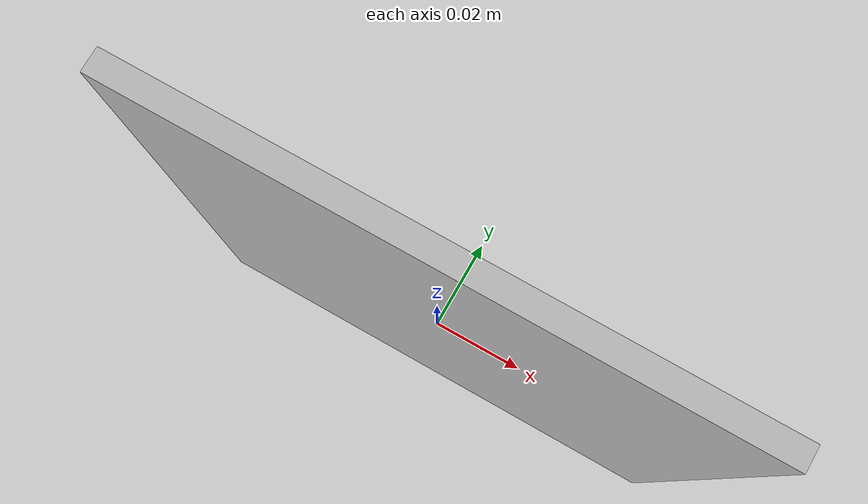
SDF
<?xml version='1.0' encoding='utf-8'?>
<sdf version="1.9">
  <model name="mano10">
    <static>true</static>
    <link name="link">
      <visual name="mano10">
        <geometry>
          <mesh>
            <uri>model://sae_26/mano10/meshes/mano10.obj</uri>
            <scale>0.5 0.5 0.5</scale>
          </mesh>
        </geometry>
      </visual>
    </link>
  </model>
</sdf>
